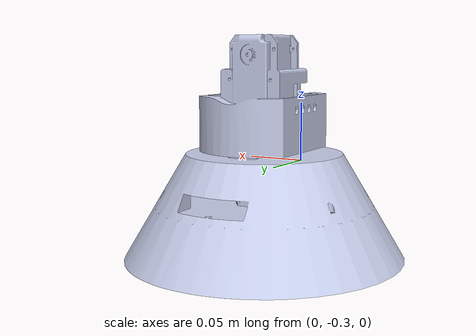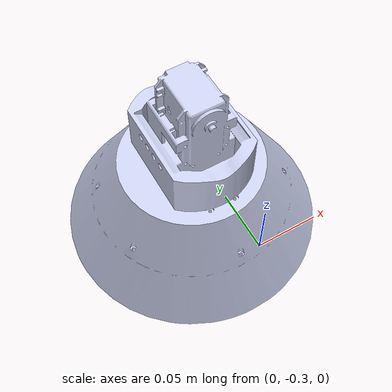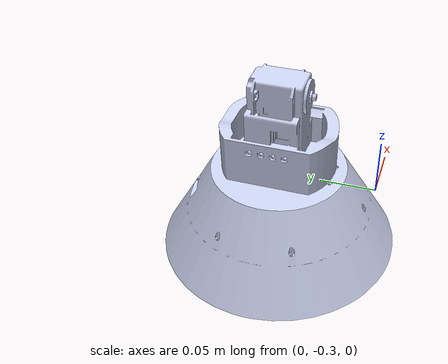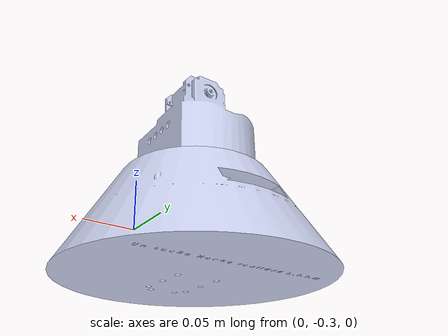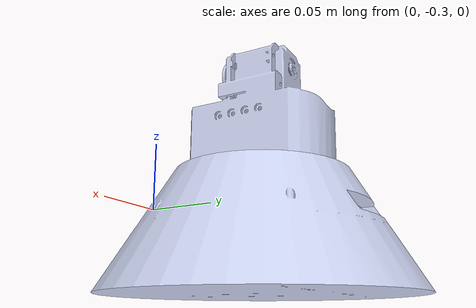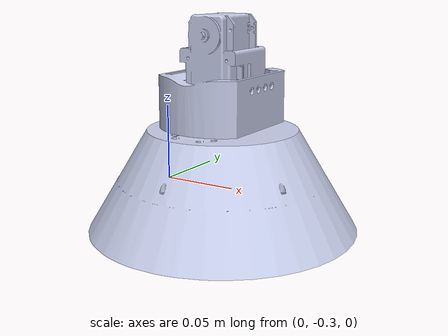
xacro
<?xml version="1.0"?>
<robot name="yaren" xmlns:xacro="http://www.ros.org/wiki/xacro">
    <link name="base_footprint"/>

    <link name="base_link">
        <inertial>
          <origin xyz="-0.0111941484552959 -0.0368458795873965 0.215654266051241" rpy="0 0 0" />
          <mass value="1.36786443462294" />
          <inertia
            ixx="0.00319634955740371"
            ixy="-1.60882455550443E-08"
            ixz="1.653324392476E-08"
            iyy="0.00601731472918889"
            iyz="4.74472482698139E-06"
            izz="0.00319515652843736" />
        </inertial>

        <visual>
          <origin xyz="0 0 0" rpy="0 0 0" />
          <geometry>
            <mesh filename="package://yaren_description/meshes/base_link.STL" />
          </geometry>
          <material name="">
            <color
              rgba="0.792156862745098 0.819607843137255 0.933333333333333 1" />
          </material>
        </visual>

        <collision>
          <origin xyz="0 0 0" rpy="0 0 0" />
          <geometry>
            <mesh filename="package://yaren_description/meshes/base_link.STL" />
          </geometry>
        </collision>
    </link>

    <joint name="base_joint" type="fixed">
        <parent link="base_footprint"/>
        <child link="base_link"/>
        <origin xyz="0 0 0" rpy="0 0 0"/>
        <axis xyz="0 0 0"/>
    </joint>

    <link name="Link_1">
        <inertial>
          <origin xyz="-0.0005406 0.03067 1.1225E-05" rpy="0 0 0" />
          <mass value="0.2613" />
          <inertia
            ixx="0.00014283"
            ixy="-8.1832E-07"
            ixz="-7.2665E-08"
            iyy="0.0002383"
            iyz="2.7932E-08"
            izz="0.00019886" />
        </inertial>

        <visual>
          <origin xyz="0 0 0" rpy="0 0 0" />
          <geometry>
            <mesh filename="package://yaren_description/meshes/Link_1.STL" />
          </geometry>
          <material name="">
            <color rgba="0.79216 0.81961 0.93333 1" />
          </material>
        </visual>

        <collision>
          <origin xyz="0 0 0" rpy="0 0 0" />
          <geometry>
            <mesh filename="package://yaren_description/meshes/Link_1.STL" />
          </geometry>
        </collision>
    </link>

    <joint name="Joint_1" type="revolute">
        <origin xyz="-0.011194 -0.21508 0.020523" rpy="1.5708 0 1.5708" />
        <parent link="base_link" />
        <child link="Link_1" />
        <axis xyz="0 1 0" />
        <limit
          lower="-0.7853"
          upper="0.7853"
          effort="300"
          velocity="3" />
    </joint>

</robot>
